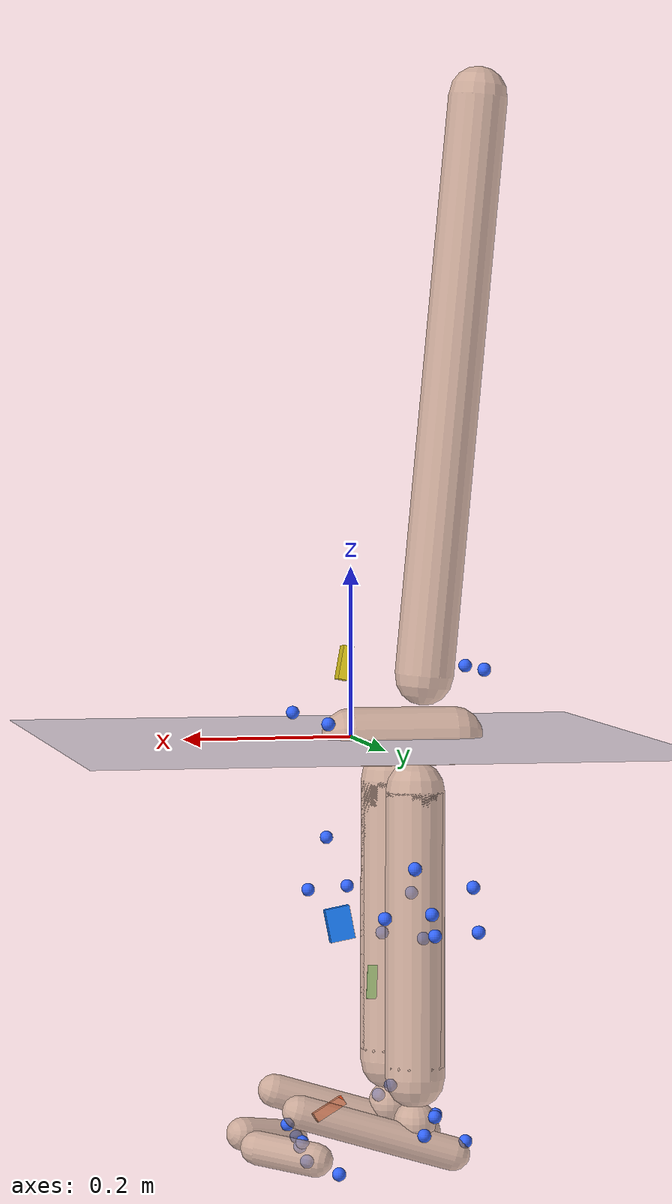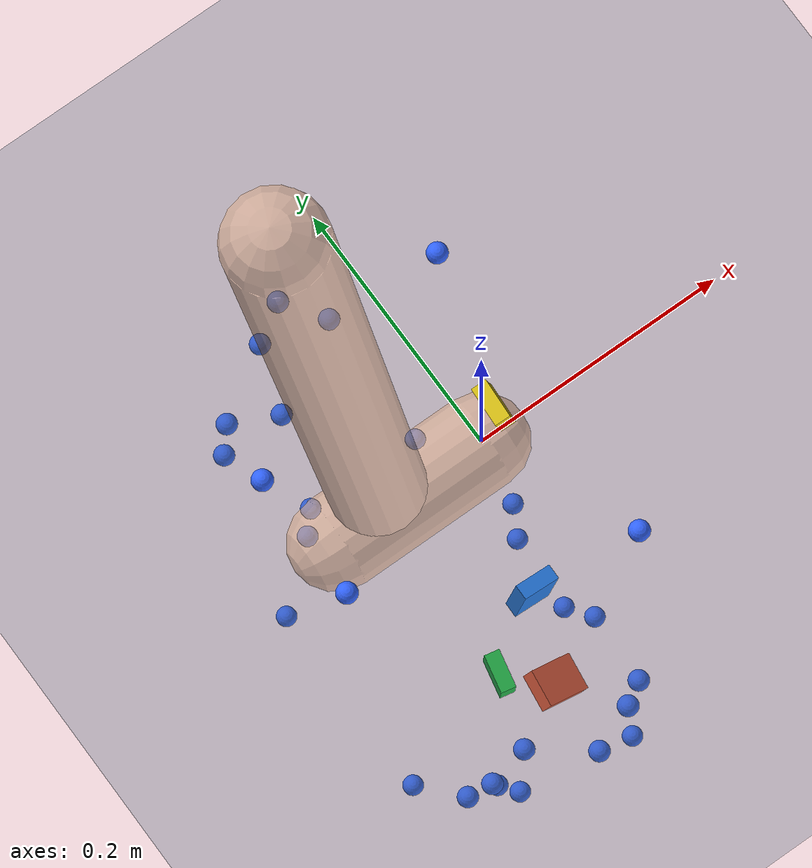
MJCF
<mujoco model="AB09">
  <compiler angle="radian" autolimits="true"/>
  <option timestep="0.005" gravity="0 0 -9.81"><flag contact="disable"/></option>
  <visual><global offwidth="1280" offheight="720"/></visual>
  <default><joint limited="false" damping="0"/><geom contype="0" conaffinity="0"/></default>
  <asset>
    <texture name="grid" type="2d" builtin="checker" rgb1="0.2 0.3 0.4" rgb2="0.3 0.4 0.5" width="512" height="512"/>
    <material name="grid" texture="grid" texrepeat="2 2" texuniform="true"/>
    <material name="skin" rgba="0.8 0.65 0.55 0.7"/>
  </asset>
  <worldbody>
    <light pos="0 0 4" dir="0 0 -1"/>
    <geom name="floor" type="plane" size="0 0 0.05" material="grid"/>
    <body name="pelvis" pos="0 0 0" quat="1 0 0 0">
      <joint name="pelvis_tx" type="slide" axis="1 0 0"/>
      <joint name="pelvis_ty" type="slide" axis="0 0 1"/>
      <joint name="pelvis_tz" type="slide" axis="0 -1 0"/>
      <joint name="pelvis_tilt" type="hinge" axis="0 -1 0"/>
      <joint name="pelvis_list" type="hinge" axis="1 0 0"/>
      <joint name="pelvis_rotation" type="hinge" axis="0 0 1"/>
      <inertial pos="-0.061859536 0 0" mass="10.3259" diaginertia="0.10325891 0.10325891 0.10325891"/>
      <geom type="capsule" fromto="0 0 0 -0.12371907 0 0" size="0.035" material="skin" mass="0"/>
      <site name="m_R_ASIS" pos="0.047509384 -0.11996831 0.020918417" size="0.008" rgba="0.2 0.4 1 1" group="2"/>
      <site name="m_L_ASIS" pos="0.050885207 0.12264417 0.025265311" size="0.008" rgba="0.2 0.4 1 1" group="2"/>
      <site name="m_L_PSIS" pos="-0.15024414 0.046888386 0.080831941" size="0.008" rgba="0.2 0.4 1 1" group="2"/>
      <site name="m_R_PSIS" pos="-0.14949448 -0.051097552 0.079398298" size="0.008" rgba="0.2 0.4 1 1" group="2"/>
      <body name="femur_r" pos="-0.061859536 -0.073058999 -0.057834729" quat="1 0 0 0">
        <joint name="hip_flexion_r" type="hinge" axis="0 -1 0"/>
        <joint name="hip_adduction_r" type="hinge" axis="1 0 0"/>
        <joint name="hip_rotation_r" type="hinge" axis="0 0 1"/>
        <inertial pos="0 0 -0.16166913" mass="8.15532" diaginertia="0.081553235 0.081553235 0.081553235"/>
        <geom type="capsule" fromto="0 0 0 0 0 -0.32333827" size="0.035" material="skin" mass="0"/>
        <site name="m_R_Thigh_Upper" pos="0.055259772 -0.11266386 -0.079839493" size="0.008" rgba="0.2 0.4 1 1" group="2"/>
        <site name="m_R_Thigh_Front" pos="0.082178671 -0.090508162 -0.14097637" size="0.008" rgba="0.2 0.4 1 1" group="2"/>
        <site name="m_R_Thigh_Rear" pos="0.028800814 -0.11614404 -0.14031222" size="0.008" rgba="0.2 0.4 1 1" group="2"/>
        <site name="m_R_Knee_Lat" pos="0.0011639015 -0.060341404 -0.38988233" size="0.008" rgba="0.2 0.4 1 1" group="2"/>
        <site name="imu_thigh" type="box" size="0.02 0.015 0.006" pos="0.064063383 0.013615109 -0.17042516" quat="0.53341575 0.55558063 -0.46402312 0.43758468" rgba="0.1 0.5 1 1" group="1"/>
        <body name="tibia_r" pos="0 0 0" quat="1 0 0 0">
          <joint name="knee_r_translation1" type="slide" axis="1 0 0"/>
          <joint name="knee_r_translation2" type="slide" axis="0 0 1"/>
          <joint name="knee_angle_r" type="hinge" axis="0 -1 0"/>
          <inertial pos="0 0 -0.16886778" mass="3.25068" diaginertia="0.032506786 0.032506786 0.032506786"/>
          <geom type="capsule" fromto="0 0 0 0 0 -0.33773556" size="0.035" material="skin" mass="0"/>
          <site name="m_R_Shank_Upper" pos="-0.04589035 -0.089503124 -0.14736246" size="0.008" rgba="0.2 0.4 1 1" group="2"/>
          <site name="m_R_Shank_Front" pos="-0.0060154318 -0.073565995 -0.19345982" size="0.008" rgba="0.2 0.4 1 1" group="2"/>
          <site name="m_R_Shank_Rear" pos="-0.058203396 -0.076594122 -0.20231413" size="0.008" rgba="0.2 0.4 1 1" group="2"/>
          <site name="m_R_Ankle_Lat" pos="-0.011310445 -0.048969108 -0.37708981" size="0.008" rgba="0.2 0.4 1 1" group="2"/>
          <site name="imu_shank" type="box" size="0.02 0.015 0.006" pos="0.019997376 -0.0075294587 -0.24442125" quat="0.72191734 0.11967424 0.68123385 -0.020829722" rgba="0.1 0.8 0.2 1" group="1"/>
          <body name="talus_r" pos="0 0 -0.38892954" quat="1 0 0 0">
            <joint name="ankle_angle_r" type="hinge" axis="-0.10501355 -0.97912632 -0.17402245"/>
            <inertial pos="0 0 0" mass="0.0876785" diaginertia="0.00087678452 0.00087678452 0.00087678452"/>
            <geom type="sphere" size="0.025" material="skin" mass="0"/>
            <body name="calcn_r" pos="-0.044111846 -0.0071635394 -0.037943242" quat="1 0 0 0">
              <joint name="subtalar_angle_r" type="hinge" axis="0.78717961 0.12094949 0.60474746"/>
              <inertial pos="0.091558917 0 0.027467675" mass="1.09598" diaginertia="0.010959806 0.010959806 0.010959806"/>
              <geom type="capsule" fromto="0 0 0 0.18311783 0 0.05493535" size="0.02" material="skin" mass="0"/>
              <site name="m_R_Heel" pos="-0.014053918 0.00088698662 0.019688119" size="0.008" rgba="0.2 0.4 1 1" group="2"/>
              <site name="m_R_Toe_Lat" pos="0.14572705 -0.058528819 -0.012026914" size="0.008" rgba="0.2 0.4 1 1" group="2"/>
              <site name="m_R_Toe_Med" pos="0.16163951 0.050725072 -0.0047152613" size="0.008" rgba="0.2 0.4 1 1" group="2"/>
              <site name="m_R_Toe_Tip" pos="0.17239104 0.026644457 0.017856106" size="0.008" rgba="0.2 0.4 1 1" group="2"/>
              <site name="imu_foot" type="box" size="0.02 0.015 0.006" pos="0.1169187 0.00047020069 0.030599678" quat="0.95784506 0.086693339 0.2716763 -0.034771964" rgba="1 0.3 0.1 1" group="1"/>
              <body name="toes_r" pos="0.16370734 -0.00098883631 -0.0018311783" quat="1 0 0 0">
                <joint name="mtp_angle_r" type="hinge" axis="-0.5809544 -0.81393611 0"/>
                <inertial pos="0.031679385 0.016022811 0.005493535" mass="0.189912" diaginertia="0.0018991153 0.0018991153 0.0018991153"/>
                <geom type="capsule" fromto="0 0 0 0.063358771 0.032045621 0.01098707" size="0.02" material="skin" mass="0"/>
              </body>
            </body>
          </body>
        </body>
      </body>
      <body name="femur_l" pos="-0.061859536 0.073058999 -0.057834729" quat="1 0 0 0">
        <joint name="hip_flexion_l" type="hinge" axis="0 -1 0"/>
        <joint name="hip_adduction_l" type="hinge" axis="-1 0 0"/>
        <joint name="hip_rotation_l" type="hinge" axis="0 0 -1"/>
        <inertial pos="0 0 -0.16166913" mass="8.15532" diaginertia="0.081553235 0.081553235 0.081553235"/>
        <geom type="capsule" fromto="0 0 0 0 0 -0.32333827" size="0.035" material="skin" mass="0"/>
        <site name="m_L_Thigh_Upper" pos="0.027336746 0.12731034 -0.077692779" size="0.008" rgba="0.2 0.4 1 1" group="2"/>
        <site name="m_L_Thigh_Front" pos="0.058729679 0.11004407 -0.13593129" size="0.008" rgba="0.2 0.4 1 1" group="2"/>
        <site name="m_L_Thigh_Rear" pos="0.0066054329 0.12264841 -0.1308069" size="0.008" rgba="0.2 0.4 1 1" group="2"/>
        <site name="m_L_Knee_Lat" pos="0.0023916187 0.063435173 -0.39507377" size="0.008" rgba="0.2 0.4 1 1" group="2"/>
        <body name="tibia_l" pos="0 0 0" quat="1 0 0 0">
          <joint name="knee_l_translation1" type="slide" axis="1 0 0"/>
          <joint name="knee_l_translation2" type="slide" axis="0 0 1"/>
          <joint name="knee_angle_l" type="hinge" axis="0 -1 0"/>
          <inertial pos="0 0 -0.16886778" mass="3.25068" diaginertia="0.032506786 0.032506786 0.032506786"/>
          <geom type="capsule" fromto="0 0 0 0 0 -0.33773556" size="0.035" material="skin" mass="0"/>
          <site name="m_L_Shank_Upper" pos="-0.050923287 0.081503308 -0.10540389" size="0.008" rgba="0.2 0.4 1 1" group="2"/>
          <site name="m_L_Shank_Front" pos="-0.0068847115 0.078162699 -0.16131623" size="0.008" rgba="0.2 0.4 1 1" group="2"/>
          <site name="m_L_Shank_Rear" pos="-0.058609991 0.076851631 -0.15821118" size="0.008" rgba="0.2 0.4 1 1" group="2"/>
          <site name="m_L_Ankle_Lat" pos="-0.014515371 0.043030282 -0.37681326" size="0.008" rgba="0.2 0.4 1 1" group="2"/>
          <body name="talus_l" pos="0 0 -0.38892954" quat="1 0 0 0">
            <joint name="ankle_angle_l" type="hinge" axis="0.10501355 -0.97912632 0.17402245"/>
            <inertial pos="0 0 0" mass="0.0876785" diaginertia="0.00087678452 0.00087678452 0.00087678452"/>
            <geom type="sphere" size="0.025" material="skin" mass="0"/>
            <body name="calcn_l" pos="-0.044111846 0.0071635394 -0.037943242" quat="1 0 0 0">
              <joint name="subtalar_angle_l" type="hinge" axis="-0.78717961 0.12094949 -0.60474746"/>
              <inertial pos="0.091558917 0 0.027467675" mass="1.09598" diaginertia="0.010959806 0.010959806 0.010959806"/>
              <geom type="capsule" fromto="0 0 0 0.18311783 0 0.05493535" size="0.02" material="skin" mass="0"/>
              <site name="m_L_Heel" pos="-0.01436324 0.0026341954 0.014578318" size="0.008" rgba="0.2 0.4 1 1" group="2"/>
              <site name="m_L_Toe_Lat" pos="0.14825222 0.063589821 -0.0081519667" size="0.008" rgba="0.2 0.4 1 1" group="2"/>
              <site name="m_L_Toe_Med" pos="0.1655879 -0.044544973 -0.01159446" size="0.008" rgba="0.2 0.4 1 1" group="2"/>
              <site name="m_L_Toe_Tip" pos="0.17466944 -0.026047307 0.014800397" size="0.008" rgba="0.2 0.4 1 1" group="2"/>
              <body name="toes_l" pos="0.16370734 0.00098883631 -0.0018311783" quat="1 0 0 0">
                <joint name="mtp_angle_l" type="hinge" axis="0.5809544 -0.81393611 0"/>
                <inertial pos="0.031679385 -0.016022811 0.005493535" mass="0.189912" diaginertia="0.0018991153 0.0018991153 0.0018991153"/>
                <geom type="capsule" fromto="0 0 0 0.063358771 -0.032045621 0.01098707" size="0.02" material="skin" mass="0"/>
              </body>
            </body>
          </body>
        </body>
      </body>
      <body name="torso" pos="-0.088108278 0 0.071309083" quat="1 0 0 0">
        <joint name="lumbar_extension" type="hinge" axis="0 -1 0"/>
        <joint name="lumbar_bending" type="hinge" axis="1 0 0"/>
        <joint name="lumbar_rotation" type="hinge" axis="0 0 1"/>
        <inertial pos="-0.032017347 0 0.34151836" mass="30.0181" diaginertia="0.30018121 0.30018121 0.30018121"/>
        <geom type="capsule" fromto="0 0 0 -0.064034693 0 0.68303673" size="0.035" material="skin" mass="0"/>
        <site name="imu_trunk" type="box" size="0.02 0.015 0.006" pos="0.095470409 -0.0040342197 0.016105893" quat="0.77090273 0.04829056 0.63500383 0.012130445" rgba="0.9 0.8 0.1 1" group="1"/>
      </body>
    </body>
  </worldbody>
  <sensor>
<accelerometer name="imu_foot_acc" site="imu_foot"/>
<gyro name="imu_foot_gyr" site="imu_foot"/>
<accelerometer name="imu_shank_acc" site="imu_shank"/>
<gyro name="imu_shank_gyr" site="imu_shank"/>
<accelerometer name="imu_thigh_acc" site="imu_thigh"/>
<gyro name="imu_thigh_gyr" site="imu_thigh"/>
<accelerometer name="imu_trunk_acc" site="imu_trunk"/>
<gyro name="imu_trunk_gyr" site="imu_trunk"/>
</sensor>
</mujoco>
